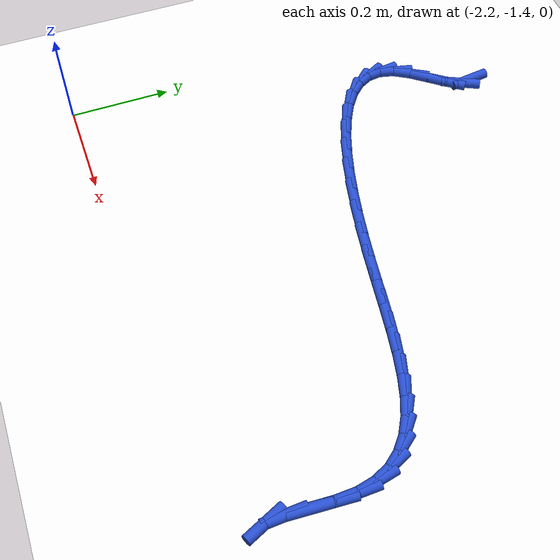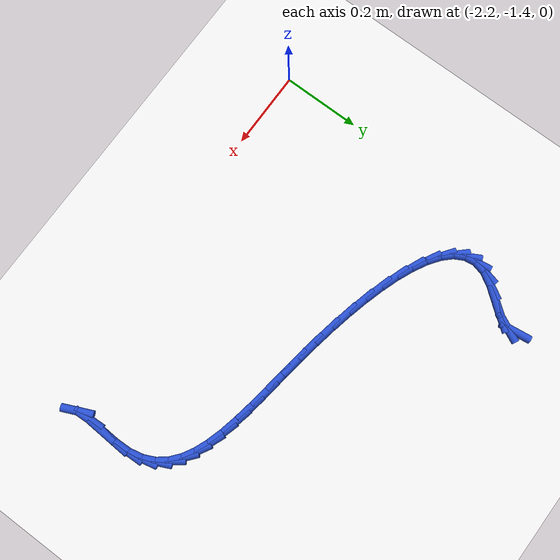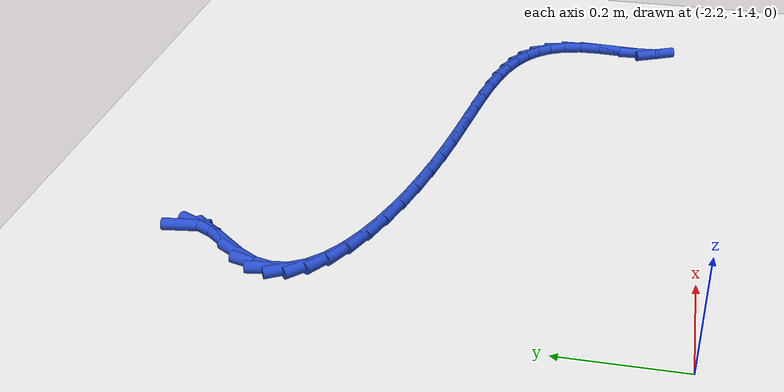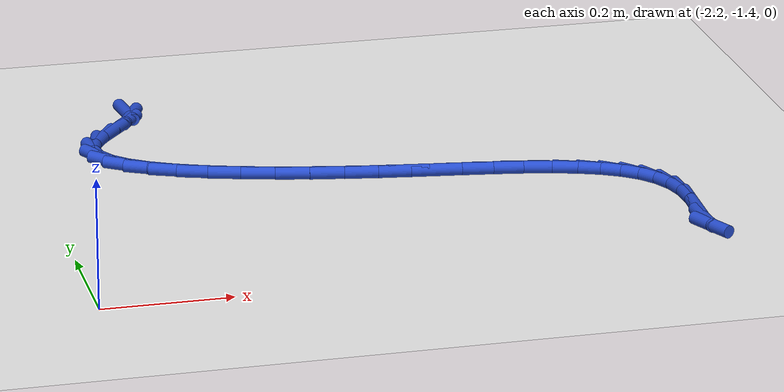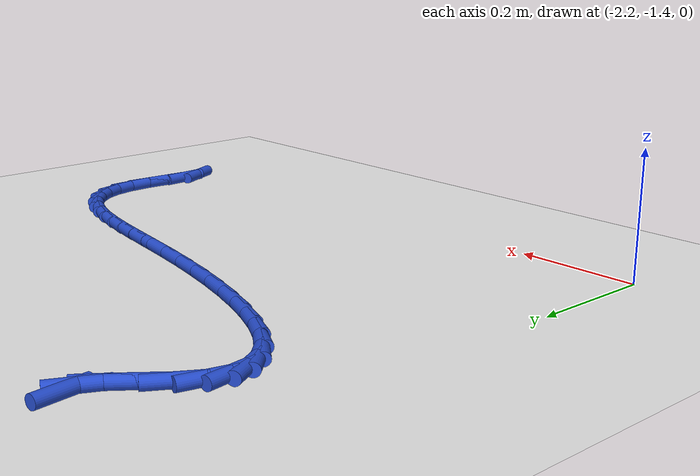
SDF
<sdf version="1.6">
 <world name="default">
  <model name="ground_plane">
   <static>1</static>
   <link name="link">
    <collision name="collision">
     <geometry><plane><normal>0 0 1</normal><size>100 100</size></plane></geometry>
     <surface><friction><ode><mu>100</mu><mu2>50</mu2></ode></friction></surface>
    </collision>
    <visual name="visual">
     <cast_shadows>0</cast_shadows>
     <geometry><plane><normal>0 0 1</normal><size>100 100</size></plane></geometry>
     <material>
      <script><uri>file://media/materials/scripts/gazebo.material</uri><name>Gazebo/WhiteGlow</name></script>
     </material>
    </visual>
   </link>
  </model>
  <model name="line">
   <link name="link_123">
    <pose>-2.009854704514965 -0.5902268116118584 0.01 0 1.57 -1.4442211229234772</pose>
    <collision name="collision">
     <geometry><cylinder><radius>0.01</radius><length>0.08</length></cylinder></geometry>
    </collision>
    <visual name="visual">
     <material>
      <script><name>Gazebo/Blue</name><uri>file://media/materials/scripts/gazebo.material</uri></script>
     </material>
     <geometry><cylinder><radius>0.01</radius><length>0.08</length></cylinder></geometry>
    </visual>
   </link>
   <link name="link_124">
    <pose>-2.007155773442255 -0.6114355644070286 0.01 0 1.57 1.126097827090872</pose>
    <collision name="collision">
     <geometry><cylinder><radius>0.01</radius><length>0.08</length></cylinder></geometry>
    </collision>
    <visual name="visual">
     <material>
      <script><name>Gazebo/Blue</name><uri>file://media/materials/scripts/gazebo.material</uri></script>
     </material>
     <geometry><cylinder><radius>0.01</radius><length>0.08</length></cylinder></geometry>
    </visual>
   </link>
   <link name="link_125">
    <pose>-2.019719673020288 -0.6378007811253867 0.01 0 1.57 0.9225171302150553</pose>
    <collision name="collision">
     <geometry><cylinder><radius>0.01</radius><length>0.08</length></cylinder></geometry>
    </collision>
    <visual name="visual">
     <material>
      <script><name>Gazebo/Blue</name><uri>file://media/materials/scripts/gazebo.material</uri></script>
     </material>
     <geometry><cylinder><radius>0.01</radius><length>0.08</length></cylinder></geometry>
    </visual>
   </link>
   <link name="link_126">
    <pose>-2.0426831192714494 -0.6681158550143966 0.01 0 1.57 0.9097619386765214</pose>
    <collision name="collision">
     <geometry><cylinder><radius>0.01</radius><length>0.08</length></cylinder></geometry>
    </collision>
    <visual name="visual">
     <material>
      <script><name>Gazebo/Blue</name><uri>file://media/materials/scripts/gazebo.material</uri></script>
     </material>
     <geometry><cylinder><radius>0.01</radius><length>0.08</length></cylinder></geometry>
    </visual>
   </link>
   <link name="link_127">
    <pose>-2.067542746794216 -0.70007881238991 0.01 0 1.57 1.0423255102417996</pose>
    <collision name="collision">
     <geometry><cylinder><radius>0.01</radius><length>0.08</length></cylinder></geometry>
    </collision>
    <visual name="visual">
     <material>
      <script><name>Gazebo/Blue</name><uri>file://media/materials/scripts/gazebo.material</uri></script>
     </material>
     <geometry><cylinder><radius>0.01</radius><length>0.08</length></cylinder></geometry>
    </visual>
   </link>
   <link name="link_128">
    <pose>-2.0858261113773953 -0.731393198403141 0.01 0 1.57 1.338754270082405</pose>
    <collision name="collision">
     <geometry><cylinder><radius>0.01</radius><length>0.08</length></cylinder></geometry>
    </collision>
    <visual name="visual">
     <material>
      <script><name>Gazebo/Blue</name><uri>file://media/materials/scripts/gazebo.material</uri></script>
     </material>
     <geometry><cylinder><radius>0.01</radius><length>0.08</length></cylinder></geometry>
    </visual>
   </link>
   <link name="link_129">
    <pose>-2.092745076904307 -0.7606738257753746 0.01 0 1.57 -1.4312294548584998</pose>
    <collision name="collision">
     <geometry><cylinder><radius>0.01</radius><length>0.08</length></cylinder></geometry>
    </collision>
    <visual name="visual">
     <material>
      <script><name>Gazebo/Blue</name><uri>file://media/materials/scripts/gazebo.material</uri></script>
     </material>
     <geometry><cylinder><radius>0.01</radius><length>0.08</length></cylinder></geometry>
    </visual>
   </link>
   <link name="link_130">
    <pose>-2.0889239616680557 -0.7878742101950753 0.01 0 1.57 -1.078528355906318</pose>
    <collision name="collision">
     <geometry><cylinder><radius>0.01</radius><length>0.08</length></cylinder></geometry>
    </collision>
    <visual name="visual">
     <material>
      <script><name>Gazebo/Blue</name><uri>file://media/materials/scripts/gazebo.material</uri></script>
     </material>
     <geometry><cylinder><radius>0.01</radius><length>0.08</length></cylinder></geometry>
    </visual>
   </link>
   <link name="link_131">
    <pose>-2.0754194799889274 -0.8130548151050444 0.01 0 1.57 -0.8094309512313647</pose>
    <collision name="collision">
     <geometry><cylinder><radius>0.01</radius><length>0.08</length></cylinder></geometry>
    </collision>
    <visual name="visual">
     <material>
      <script><name>Gazebo/Blue</name><uri>file://media/materials/scripts/gazebo.material</uri></script>
     </material>
     <geometry><cylinder><radius>0.01</radius><length>0.08</length></cylinder></geometry>
    </visual>
   </link>
   <link name="link_132">
    <pose>-2.053288346187205 -0.8362761039480843 0.01 0 1.57 -0.6226394606751708</pose>
    <collision name="collision">
     <geometry><cylinder><radius>0.01</radius><length>0.08</length></cylinder></geometry>
    </collision>
    <visual name="visual">
     <material>
      <script><name>Gazebo/Blue</name><uri>file://media/materials/scripts/gazebo.material</uri></script>
     </material>
     <geometry><cylinder><radius>0.01</radius><length>0.08</length></cylinder></geometry>
    </visual>
   </link>
   <link name="link_133">
    <pose>-2.023587274583173 -0.8575985401669957 0.01 0 1.57 -0.49359969742307186</pose>
    <collision name="collision">
     <geometry><cylinder><radius>0.01</radius><length>0.08</length></cylinder></geometry>
    </collision>
    <visual name="visual">
     <material>
      <script><name>Gazebo/Blue</name><uri>file://media/materials/scripts/gazebo.material</uri></script>
     </material>
     <geometry><cylinder><radius>0.01</radius><length>0.08</length></cylinder></geometry>
    </visual>
   </link>
   <link name="link_134">
    <pose>-1.9873729794971162 -0.8770825872045801 0.01 0 1.57 -0.40178993937784907</pose>
    <collision name="collision">
     <geometry><cylinder><radius>0.01</radius><length>0.08</length></cylinder></geometry>
    </collision>
    <visual name="visual">
     <material>
      <script><name>Gazebo/Blue</name><uri>file://media/materials/scripts/gazebo.material</uri></script>
     </material>
     <geometry><cylinder><radius>0.01</radius><length>0.08</length></cylinder></geometry>
    </visual>
   </link>
   <link name="link_135">
    <pose>-1.9457021752493187 -0.8947887085036401 0.01 0 1.57 -0.33404158466383155</pose>
    <collision name="collision">
     <geometry><cylinder><radius>0.01</radius><length>0.08</length></cylinder></geometry>
    </collision>
    <visual name="visual">
     <material>
      <script><name>Gazebo/Blue</name><uri>file://media/materials/scripts/gazebo.material</uri></script>
     </material>
     <geometry><cylinder><radius>0.01</radius><length>0.08</length></cylinder></geometry>
    </visual>
   </link>
   <link name="link_136">
    <pose>-1.899631576160064 -0.9107773675069766 0.01 0 1.57 -0.28228902675621576</pose>
    <collision name="collision">
     <geometry><cylinder><radius>0.01</radius><length>0.08</length></cylinder></geometry>
    </collision>
    <visual name="visual">
     <material>
      <script><name>Gazebo/Blue</name><uri>file://media/materials/scripts/gazebo.material</uri></script>
     </material>
     <geometry><cylinder><radius>0.01</radius><length>0.08</length></cylinder></geometry>
    </visual>
   </link>
   <link name="link_137">
    <pose>-1.8502178965496368 -0.9251090276573917 0.01 0 1.57 -0.24151888334706212</pose>
    <collision name="collision">
     <geometry><cylinder><radius>0.01</radius><length>0.08</length></cylinder></geometry>
    </collision>
    <visual name="visual">
     <material>
      <script><name>Gazebo/Blue</name><uri>file://media/materials/scripts/gazebo.material</uri></script>
     </material>
     <geometry><cylinder><radius>0.01</radius><length>0.08</length></cylinder></geometry>
    </visual>
   </link>
   <link name="link_138">
    <pose>-1.7985178507383202 -0.9378441523976871 0.01 0 1.57 -0.20850836500583864</pose>
    <collision name="collision">
     <geometry><cylinder><radius>0.01</radius><length>0.08</length></cylinder></geometry>
    </collision>
    <visual name="visual">
     <material>
      <script><name>Gazebo/Blue</name><uri>file://media/materials/scripts/gazebo.material</uri></script>
     </material>
     <geometry><cylinder><radius>0.01</radius><length>0.08</length></cylinder></geometry>
    </visual>
   </link>
   <link name="link_139">
    <pose>-1.7455881530464008 -0.9490432051706639 0.01 0 1.57 -0.1811004280878433</pose>
    <collision name="collision">
     <geometry><cylinder><radius>0.01</radius><length>0.08</length></cylinder></geometry>
    </collision>
    <visual name="visual">
     <material>
      <script><name>Gazebo/Blue</name><uri>file://media/materials/scripts/gazebo.material</uri></script>
     </material>
     <geometry><cylinder><radius>0.01</radius><length>0.08</length></cylinder></geometry>
    </visual>
   </link>
   <link name="link_140">
    <pose>-1.6924855177941618 -0.9587666494191243 0.01 0 1.57 -0.1584659526651095</pose>
    <collision name="collision">
     <geometry><cylinder><radius>0.01</radius><length>0.08</length></cylinder></geometry>
    </collision>
    <visual name="visual">
     <material>
      <script><name>Gazebo/Blue</name><uri>file://media/materials/scripts/gazebo.material</uri></script>
     </material>
     <geometry><cylinder><radius>0.01</radius><length>0.08</length></cylinder></geometry>
    </visual>
   </link>
   <link name="link_141">
    <pose>-1.640208935588969 -0.9671207530752636 0.01 0 1.57 -0.14471815764149454</pose>
    <collision name="collision">
     <geometry><cylinder><radius>0.01</radius><length>0.08</length></cylinder></geometry>
    </collision>
    <visual name="visual">
     <material>
      <script><name>Gazebo/Blue</name><uri>file://media/materials/scripts/gazebo.material</uri></script>
     </material>
     <geometry><cylinder><radius>0.01</radius><length>0.08</length></cylinder></geometry>
    </visual>
   </link>
   <link name="link_142">
    <pose>-1.5893535160022716 -0.9745322687333148 0.01 0 1.57 -0.14251470217310058</pose>
    <collision name="collision">
     <geometry><cylinder><radius>0.01</radius><length>0.08</length></cylinder></geometry>
    </collision>
    <visual name="visual">
     <material>
      <script><name>Gazebo/Blue</name><uri>file://media/materials/scripts/gazebo.material</uri></script>
     </material>
     <geometry><cylinder><radius>0.01</radius><length>0.08</length></cylinder></geometry>
    </visual>
   </link>
   <link name="link_143">
    <pose>-1.5403418759937937 -0.981564824035996 0.01 0 1.57 -0.15319388275586338</pose>
    <collision name="collision">
     <geometry><cylinder><radius>0.01</radius><length>0.08</length></cylinder></geometry>
    </collision>
    <visual name="visual">
     <material>
      <script><name>Gazebo/Blue</name><uri>file://media/materials/scripts/gazebo.material</uri></script>
     </material>
     <geometry><cylinder><radius>0.01</radius><length>0.08</length></cylinder></geometry>
    </visual>
   </link>
   <link name="link_144">
    <pose>-1.4935959857892778 -0.9887825598175397 0.01 0 1.57 -0.17889717330341545</pose>
    <collision name="collision">
     <geometry><cylinder><radius>0.01</radius><length>0.08</length></cylinder></geometry>
    </collision>
    <visual name="visual">
     <material>
      <script><name>Gazebo/Blue</name><uri>file://media/materials/scripts/gazebo.material</uri></script>
     </material>
     <geometry><cylinder><radius>0.01</radius><length>0.08</length></cylinder></geometry>
    </visual>
   </link>
   <link name="link_145">
    <pose>-1.4495378156144663 -0.9967496169121789 0.01 0 1.57 -0.22287384087793338</pose>
    <collision name="collision">
     <geometry><cylinder><radius>0.01</radius><length>0.08</length></cylinder></geometry>
    </collision>
    <visual name="visual">
     <material>
      <script><name>Gazebo/Blue</name><uri>file://media/materials/scripts/gazebo.material</uri></script>
     </material>
     <geometry><cylinder><radius>0.01</radius><length>0.08</length></cylinder></geometry>
    </visual>
   </link>
   <link name="link_146">
    <pose>-1.4085893356951065 -1.006030136154146 0.01 0 1.57 -0.28981507317123834</pose>
    <collision name="collision">
     <geometry><cylinder><radius>0.01</radius><length>0.08</length></cylinder></geometry>
    </collision>
    <visual name="visual">
     <material>
      <script><name>Gazebo/Blue</name><uri>file://media/materials/scripts/gazebo.material</uri></script>
     </material>
     <geometry><cylinder><radius>0.01</radius><length>0.08</length></cylinder></geometry>
    </visual>
   </link>
   <link name="link_147">
    <pose>-1.3711725162569404 -1.0171882583776737 0.01 0 1.57 -0.3860223431044467</pose>
    <collision name="collision">
     <geometry><cylinder><radius>0.01</radius><length>0.08</length></cylinder></geometry>
    </collision>
    <visual name="visual">
     <material>
      <script><name>Gazebo/Blue</name><uri>file://media/materials/scripts/gazebo.material</uri></script>
     </material>
     <geometry><cylinder><radius>0.01</radius><length>0.08</length></cylinder></geometry>
    </visual>
   </link>
   <link name="link_148">
    <pose>-1.3377093275257113 -1.0307881244169945 0.01 0 1.57 -0.5187384044788609</pose>
    <collision name="collision">
     <geometry><cylinder><radius>0.01</radius><length>0.08</length></cylinder></geometry>
    </collision>
    <visual name="visual">
     <material>
      <script><name>Gazebo/Blue</name><uri>file://media/materials/scripts/gazebo.material</uri></script>
     </material>
     <geometry><cylinder><radius>0.01</radius><length>0.08</length></cylinder></geometry>
    </visual>
   </link>
   <link name="link_149">
    <pose>-1.3086217397271631 -1.0473938751063414 0.01 0 1.57 -0.693134888578352</pose>
    <collision name="collision">
     <geometry><cylinder><radius>0.01</radius><length>0.08</length></cylinder></geometry>
    </collision>
    <visual name="visual">
     <material>
      <script><name>Gazebo/Blue</name><uri>file://media/materials/scripts/gazebo.material</uri></script>
     </material>
     <geometry><cylinder><radius>0.01</radius><length>0.08</length></cylinder></geometry>
    </visual>
   </link>
   <link name="link_150">
    <pose>-1.2843317230870401 -1.0675696512799473 0.01 0 1.57 -0.9055955000028875</pose>
    <collision name="collision">
     <geometry><cylinder><radius>0.01</radius><length>0.08</length></cylinder></geometry>
    </collision>
    <visual name="visual">
     <material>
      <script><name>Gazebo/Blue</name><uri>file://media/materials/scripts/gazebo.material</uri></script>
     </material>
     <geometry><cylinder><radius>0.01</radius><length>0.08</length></cylinder></geometry>
    </visual>
   </link>
   <link name="link_151">
    <pose>-1.2652612478310858 -1.0918795937720456 0.01 0 1.57 -1.1372370302626456</pose>
    <collision name="collision">
     <geometry><cylinder><radius>0.01</radius><length>0.08</length></cylinder></geometry>
    </collision>
    <visual name="visual">
     <material>
      <script><name>Gazebo/Blue</name><uri>file://media/materials/scripts/gazebo.material</uri></script>
     </material>
     <geometry><cylinder><radius>0.01</radius><length>0.08</length></cylinder></geometry>
    </visual>
   </link>
   <link name="link_152">
    <pose>-1.251832284185044 -1.1208878434168672 0.01 0 1.57 -1.3590959786647996</pose>
    <collision name="collision">
     <geometry><cylinder><radius>0.01</radius><length>0.08</length></cylinder></geometry>
    </collision>
    <visual name="visual">
     <material>
      <script><name>Gazebo/Blue</name><uri>file://media/materials/scripts/gazebo.material</uri></script>
     </material>
     <geometry><cylinder><radius>0.01</radius><length>0.08</length></cylinder></geometry>
    </visual>
   </link>
   <link name="link_153">
    <pose>-1.2444668023746583 -1.1551585410486458 0.01 0 1.57 -1.541438178534359</pose>
    <collision name="collision">
     <geometry><cylinder><radius>0.01</radius><length>0.08</length></cylinder></geometry>
    </collision>
    <visual name="visual">
     <material>
      <script><name>Gazebo/Blue</name><uri>file://media/materials/scripts/gazebo.material</uri></script>
     </material>
     <geometry><cylinder><radius>0.01</radius><length>0.08</length></cylinder></geometry>
    </visual>
   </link>
   <link name="link_154">
    <pose>-1.243299864434001 -1.1948954702796784 0.01 0 1.57 1.5098848057224206</pose>
    <collision name="collision">
     <geometry><cylinder><radius>0.01</radius><length>0.08</length></cylinder></geometry>
    </collision>
    <visual name="visual">
     <material>
      <script><name>Gazebo/Blue</name><uri>file://media/materials/scripts/gazebo.material</uri></script>
     </material>
     <geometry><cylinder><radius>0.01</radius><length>0.08</length></cylinder></geometry>
    </visual>
   </link>
   <link name="link_155">
    <pose>-1.2458702192324962 -1.2370414405624188 0.01 0 1.57 1.5088518186313373</pose>
    <collision name="collision">
     <geometry><cylinder><radius>0.01</radius><length>0.08</length></cylinder></geometry>
    </collision>
    <visual name="visual">
     <material>
      <script><name>Gazebo/Blue</name><uri>file://media/materials/scripts/gazebo.material</uri></script>
     </material>
     <geometry><cylinder><radius>0.01</radius><length>0.08</length></cylinder></geometry>
    </visual>
   </link>
   <link name="link_156">
    <pose>-1.2483365654549936 -1.2768059157527807 0.01 0 1.57 -1.52503675961847</pose>
    <collision name="collision">
     <geometry><cylinder><radius>0.01</radius><length>0.08</length></cylinder></geometry>
    </collision>
    <visual name="visual">
     <material>
      <script><name>Gazebo/Blue</name><uri>file://media/materials/scripts/gazebo.material</uri></script>
     </material>
     <geometry><cylinder><radius>0.01</radius><length>0.08</length></cylinder></geometry>
    </visual>
   </link>
   <link name="link_157">
    <pose>-1.2468448413813105 -1.3093823326142435 0.01 0 1.57 -1.1548901653248393</pose>
    <collision name="collision">
     <geometry><cylinder><radius>0.01</radius><length>0.08</length></cylinder></geometry>
    </collision>
    <visual name="visual">
     <material>
      <script><name>Gazebo/Blue</name><uri>file://media/materials/scripts/gazebo.material</uri></script>
     </material>
     <geometry><cylinder><radius>0.01</radius><length>0.08</length></cylinder></geometry>
    </visual>
   </link>
  </model>
 </world>
</sdf>
